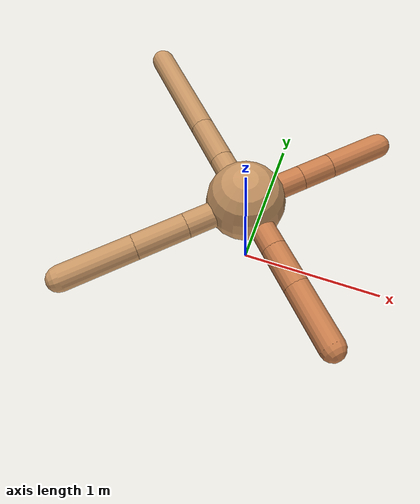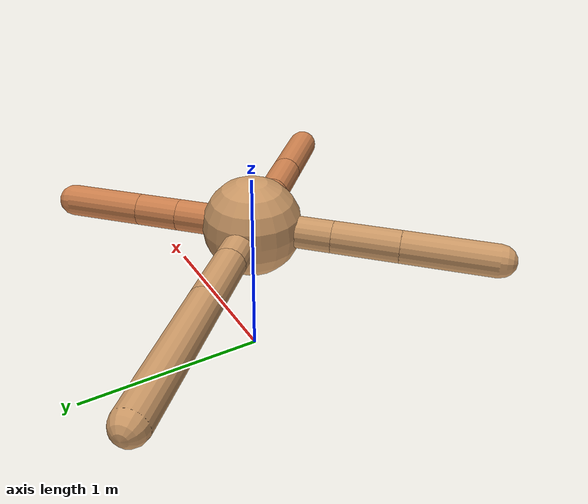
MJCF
<mujoco model="ant">
  <compiler angle="degree" coordinate="local" inertiafromgeom="true" />
  <option integrator="RK4" timestep="0.01" />
  <custom>
    <numeric data="0.0 0.0 0.55 1.0 0.0 0.0 0.0 0.0 1.0 0.0 -1.0 0.0 -1.0 0.0 1.0" name="init_qpos" />
  </custom>
  <default>
    <joint armature="1" damping="1" limited="true" />
    <geom conaffinity="0" condim="3" density="5.0" friction="1.5 0.1 0.1" margin="0.01" rgba="0.8 0.6 0.4 1" />
  </default>
  <worldbody>
    <body name="torso" pos="0 0 0.75">
      <geom name="torso_geom" pos="0 0 0" size="0.25" type="sphere" />

      <body name="front_left_leg" pos="0 0 0">
        <geom fromto="0.0 0.0 0.0 0.2760547063417391 0.2760547063417391 0.0" name="aux_1_geom" size="0.08" type="capsule" rgba=".8 .5 .3 1" />
        <body name="aux_1" pos="0.2760547063417391 0.2760547063417391 0.0">
          <joint axis="0 0 1" name="hip_1" pos="0.0 0.0 0.0" range="-40 40" type="hinge" />
          <geom fromto="0.0 0.0 0.0 0.1516496821136979 0.1516496821136979 0.0" name="left_leg_geom" size="0.08" type="capsule" rgba=".8 .5 .3 1" />
          <body pos="0.1516496821136979 0.1516496821136979 0.0" name="front_left_foot">
            <joint axis="-1 1 0" name="ankle_1" pos="0.0 0.0 0.0" range="30 100" type="hinge" />
            <geom fromto="0.0 0.0 0.0 0.2678142001978618 0.2678142001978618 0.0" name="left_ankle_geom" size="0.08" type="capsule" rgba=".8 .5 .3 1" />
          </body>
        </body>
      </body>
      <body name="front_right_leg" pos="0 0 0">
        <geom fromto="0.0 0.0 0.0 -0.2505158160823107 0.2505158160823107 0.0" name="aux_2_geom" size="0.08" type="capsule" />
        <body name="aux_2" pos="-0.2505158160823107 0.2505158160823107 0.0">
          <joint axis="0 0 1" name="hip_2" pos="0.0 0.0 0.0" range="-40 40" type="hinge" />
          <geom fromto="0.0 0.0 0.0 -0.2193477791245938 0.2193477791245938 0.0" name="right_leg_geom" size="0.08" type="capsule" />
          <body pos="-0.2193477791245938 0.2193477791245938 0.0" name="front_right_foot">
            <joint axis="1 1 0" name="ankle_2" pos="0.0 0.0 0.0" range="-100 -30" type="hinge" />
            <geom fromto="0.0 0.0 0.0 -0.5149679688411924 0.5149679688411924 0.0" name="right_ankle_geom" size="0.08" type="capsule" />
          </body>
        </body>
      </body>
      <body name="left_back_leg" pos="0 0 0">
        <geom fromto="0.0 0.0 0.0 -0.2880653467835639 -0.2880653467835639 0.0" name="aux_3_geom" size="0.08" type="capsule" />
        <body name="aux_3" pos="-0.2880653467835639 -0.2880653467835639 0.0">
          <joint axis="0 0 1" name="hip_3" pos="0.0 0.0 0.0" range="-40 40" type="hinge" />
          <geom fromto="0.0 0.0 0.0 -0.23284418319014033 -0.23284418319014033 0.0" name="back_leg_geom" size="0.08" type="capsule" />
          <body pos="-0.23284418319014033 -0.23284418319014033 0.0" name="left_back_foot">
            <joint axis="-1 1 0" name="ankle_3" pos="0.0 0.0 0.0" range="-100 -30" type="hinge" />
            <geom fromto="0.0 0.0 0.0 -0.32184722070388794 -0.32184722070388794 0.0" name="third_ankle_geom" size="0.08" type="capsule" />
          </body>
        </body>
      </body>
      <body name="right_back_leg" pos="0 0 0">
        <geom fromto="0.0 0.0 0.0 0.265903907738914 -0.265903907738914 0.0" name="aux_4_geom" size="0.08" type="capsule" rgba=".8 .5 .3 1" />
        <body name="aux_4" pos="0.265903907738914 -0.265903907738914 0.0">
          <joint axis="0 0 1" name="hip_4" pos="0.0 0.0 0.0" range="-40 40" type="hinge" />
          <geom fromto="0.0 0.0 0.0 0.18885544720610425 -0.18885544720610425 0.0" name="rightback_leg_geom" size="0.08" type="capsule" rgba=".8 .5 .3 1" />
          <body pos="0.18885544720610425 -0.18885544720610425 0.0" name="right_back_foot">
            <joint axis="1 1 0" name="ankle_4" pos="0.0 0.0 0.0" range="30 100" type="hinge" />
            <geom fromto="0.0 0.0 0.0 0.27662791152300104 -0.27662791152300104 0.0" name="fourth_ankle_geom" size="0.08" type="capsule" rgba=".8 .5 .3 1" />
          </body>
        </body>
      </body>
    </body>
  </worldbody>
  <actuator>
    <motor ctrllimited="true" ctrlrange="-1.0 1.0" joint="hip_4" gear="150" />
    <motor ctrllimited="true" ctrlrange="-1.0 1.0" joint="ankle_4" gear="150" />
    <motor ctrllimited="true" ctrlrange="-1.0 1.0" joint="hip_1" gear="150" />
    <motor ctrllimited="true" ctrlrange="-1.0 1.0" joint="ankle_1" gear="150" />
    <motor ctrllimited="true" ctrlrange="-1.0 1.0" joint="hip_2" gear="150" />
    <motor ctrllimited="true" ctrlrange="-1.0 1.0" joint="ankle_2" gear="150" />
    <motor ctrllimited="true" ctrlrange="-1.0 1.0" joint="hip_3" gear="150" />
    <motor ctrllimited="true" ctrlrange="-1.0 1.0" joint="ankle_3" gear="150" />
  </actuator>
</mujoco>
